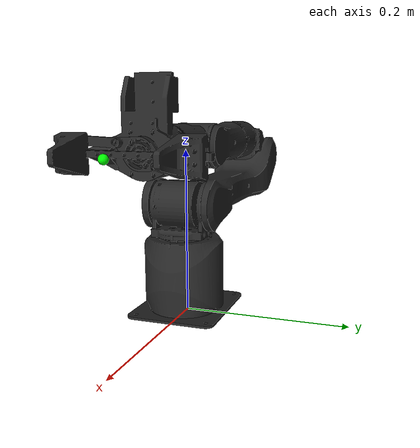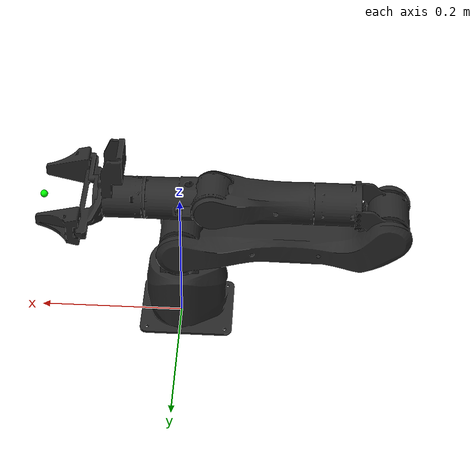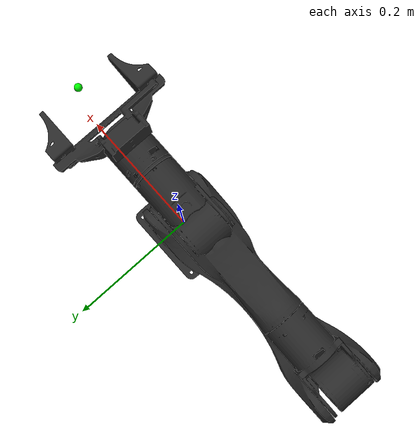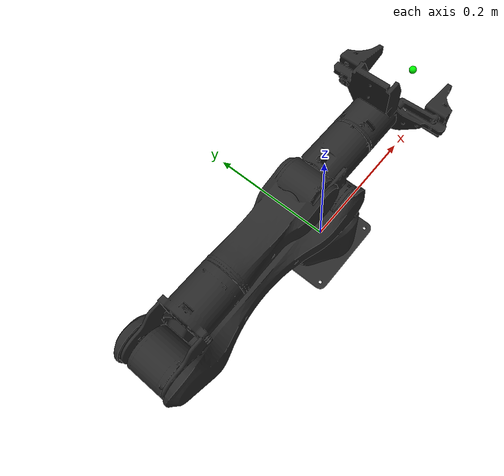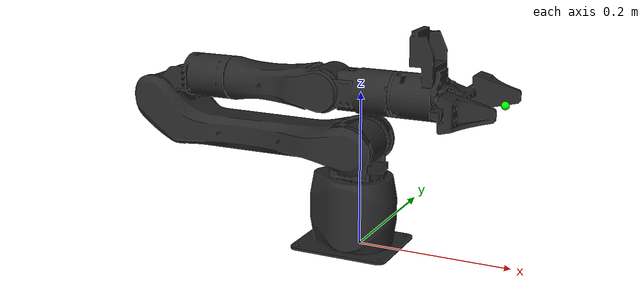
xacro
<?xml version="1.0"?>
<robot xmlns:xacro="http://www.ros.org/wiki/xacro" name="alicia_m_v1_2_follower">
    <xacro:arg name="initial_positions_file" default="initial_positions.yaml" />
    <xacro:arg name="ros2_control_plugin" default="mock_components/GenericSystem" />
    <xacro:arg name="serial_port" default="/dev/ttyACM0" />
    <xacro:arg name="baudrate" default="1000000" />
    <xacro:arg name="control_mode" default="pv" />
    <xacro:arg name="default_speed" default="1.0" />
    <xacro:arg name="mit_kp" default="50.0" />
    <xacro:arg name="mit_kd" default="2.0" />

    <!-- 导入 URDF 模型 -->
    <xacro:include filename="$(find alicia_m_descriptions)/urdf/Alicia_M_v1_2/Alicia_M_v1_2_follower.urdf" />

    <!-- 导入 ros2_control 配置 -->
    <xacro:include filename="alicia_m_v1_2_follower.ros2_control.xacro" />

    <xacro:alicia_m_v1_2_follower_ros2_control
        name="AliciaHardware"
        initial_positions_file="$(arg initial_positions_file)"
        ros2_control_plugin="$(arg ros2_control_plugin)"
        serial_port="$(arg serial_port)"
        baudrate="$(arg baudrate)"
        control_mode="$(arg control_mode)"
        default_speed="$(arg default_speed)"
        mit_kp="$(arg mit_kp)"
        mit_kd="$(arg mit_kd)"/>

</robot>

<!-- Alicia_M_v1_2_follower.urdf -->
<robot
  name="alicia_m_v1_2_follower">
  <mujoco>
    <compiler meshdir="../../meshes/Alicia_M_v1_2/follower" discardvisual="false" />
  </mujoco>
  <link
    name="base_link">
    <inertial>
      <origin
        xyz="-0.0103334311485526 -0.00398385453945082 0.0143582891490441"
        rpy="0 0 0" />
      <mass
        value="1.2877" />
      <inertia
        ixx="0.00234861116473635"
        ixy="-9.65297457777555E-08"
        ixz="4.24432699737844E-05"
        iyy="0.00240394161469715"
        iyz="4.00703606824947E-08"
        izz="0.00318615555166408" />
    </inertial>
    <visual>
      <origin
        xyz="0 0 0"
        rpy="0 0 0" />
      <geometry>
        <mesh
          filename="package://alicia_m_descriptions/meshes/Alicia_M_v1_2/follower/base_link.STL" />
      </geometry>
      <material
        name="">
        <color
          rgba="0.15 0.15 0.15 1" />
      </material>
    </visual>
    <collision>
      <origin
        xyz="0 0 0"
        rpy="0 0 0" />
      <geometry>
        <mesh
          filename="package://alicia_m_descriptions/meshes/Alicia_M_v1_2/follower/base_link.STL" />
      </geometry>
    </collision>
  </link>
  <link
    name="link1">
    <inertial>
      <origin
        xyz="-0.00128221166671431 -0.000784868444913489 0.0320390880049268"
        rpy="0 0 0" />
      <mass
        value="0.5406" />
      <inertia
        ixx="0.000106554926497957"
        ixy="-2.30140022681205E-07"
        ixz="-7.39121862553689E-08"
        iyy="8.50049672355468E-05"
        iyz="1.78364303375665E-07"
        izz="9.72433156881315E-05" />
    </inertial>
    <visual>
      <origin
        xyz="0 0 0"
        rpy="0 0 0" />
      <geometry>
        <mesh
          filename="package://alicia_m_descriptions/meshes/Alicia_M_v1_2/follower/Link1.STL" />
      </geometry>
      <material
        name="">
        <color
          rgba="0.15 0.15 0.15 1" />
      </material>
    </visual>
    <collision>
      <origin
        xyz="0 0 0"
        rpy="0 0 0" />
      <geometry>
        <mesh
          filename="package://alicia_m_descriptions/meshes/Alicia_M_v1_2/follower/Link1.STL" />
      </geometry>
    </collision>
  </link>
  <joint
    name="joint1"
    type="revolute">
    <origin
      xyz="0 -0.0039812 0.09125"
      rpy="0 0 1.5708" />
    <parent
      link="base_link" />
    <child
      link="link1" />
    <axis
      xyz="0 0 1" />
    <limit
      lower="-2.7475"
      upper="2.7475"
      effort="5"
      velocity="10" />
  </joint>
  <link
    name="link2">
    <inertial>
      <origin
        xyz="-0.149110206131976 0.00587855056496403 0.00511128026103987"
        rpy="0 0 0" />
      <mass
        value="0.7456" />
      <inertia
        ixx="0.000390594992994462"
        ixy="-0.000174513517791999"
        ixz="-1.08397040021435E-06"
        iyy="0.00252153883989753"
        iyz="2.76601011372572E-07"
        izz="0.00247149215867246" />
    </inertial>
    <visual>
      <origin
        xyz="0 0 0"
        rpy="0 0 0" />
      <geometry>
        <mesh
          filename="package://alicia_m_descriptions/meshes/Alicia_M_v1_2/follower/Link2.STL" />
      </geometry>
      <material
        name="">
        <color
          rgba="0.15 0.15 0.15 1" />
      </material>
    </visual>
    <collision>
      <origin
        xyz="0 0 0"
        rpy="0 0 0" />
      <geometry>
        <mesh
          filename="package://alicia_m_descriptions/meshes/Alicia_M_v1_2/follower/Link2.STL" />
      </geometry>
    </collision>
  </link>
  <joint
    name="joint2"
    type="revolute">
    <origin
      xyz="0.0039812 0 0.0425"
      rpy="1.5708 0 -1.5708" />
    <parent
      link="link1" />
    <child
      link="link2" />
    <axis
      xyz="0 0 1" />
    <limit
      lower="-3.14"
      upper="0"
      effort="5"
      velocity="10" />
  </joint>
  <link
    name="link3">
    <inertial>
      <origin
        xyz="0.0471352717326471 0.0202037498946963 0.00423214628577229"
        rpy="0 0 0" />
      <mass
        value="0.4848" />
      <inertia
        ixx="0.0002147828565748"
        ixy="9.61503533058426E-06"
        ixz="-7.38783597929946E-08"
        iyy="0.000170815770161173"
        iyz="-5.15998814935893E-08"
        izz="0.000191605361638939" />
    </inertial>
    <visual>
      <origin
        xyz="0 0 0"
        rpy="0 0 0" />
      <geometry>
        <mesh
          filename="package://alicia_m_descriptions/meshes/Alicia_M_v1_2/follower/Link3.STL" />
      </geometry>
      <material
        name="">
        <color
          rgba="0.15 0.15 0.15 1" />
      </material>
    </visual>
    <collision>
      <origin
        xyz="0 0 0"
        rpy="0 0 0" />
      <geometry>
        <mesh
          filename="package://alicia_m_descriptions/meshes/Alicia_M_v1_2/follower/Link3.STL" />
      </geometry>
    </collision>
  </link>
  <joint
    name="joint3"
    type="revolute">
    <origin
      xyz="-0.28184 0.040424 0"
      rpy="0 0 0" />
    <parent
      link="link2" />
    <child
      link="link3" />
    <axis
      xyz="0 0 -1" />
    <limit
      lower="-3.14"
      upper="0"
      effort="5"
      velocity="10" />
  </joint>
  <link
    name="link4">
    <inertial>
      <origin
        xyz="-5.27169367604829E-05 0.000828604472237988 0.101643736358595"
        rpy="0 0 0" />
      <mass
        value="0.5496" />
      <inertia
        ixx="0.00028255308883228"
        ixy="-1.33853178351593E-07"
        ixz="2.70285319075968E-07"
        iyy="0.000326578235252475"
        iyz="4.29699957506392E-07"
        izz="0.000156850634511828" />
    </inertial>
    <visual>
      <origin
        xyz="0 0 0"
        rpy="0 0 0" />
      <geometry>
        <mesh
          filename="package://alicia_m_descriptions/meshes/Alicia_M_v1_2/follower/Link4.STL" />
      </geometry>
      <material
        name="">
        <color
          rgba="0.15 0.15 0.15 1" />
      </material>
    </visual>
    <collision>
      <origin
        xyz="0 0 0"
        rpy="0 0 0" />
      <geometry>
        <mesh
          filename="package://alicia_m_descriptions/meshes/Alicia_M_v1_2/follower/Link4.STL" />
      </geometry>
    </collision>
  </link>
  <joint
    name="joint4"
    type="revolute">
    <origin
      xyz="0.10092 0.028546 0.0036562"
      rpy="-1.5708 0 -1.5708" />
    <parent
      link="link3" />
    <child
      link="link4" />
    <axis
      xyz="0 0 1" />
    <limit
      lower="-2.79"
      upper="2.79"
      effort="5"
      velocity="10" />
  </joint>
  <link
    name="link5">
    <inertial>
      <origin
        xyz="-0.000158067588989119 0.0618237517311098 0.00493170386673768"
        rpy="0 0 0" />
      <mass
        value="0.40889" />
      <inertia
        ixx="0.000104587906011128"
        ixy="-1.6454205645401E-07"
        ixz="-2.7063034615432E-08"
        iyy="0.000134781703440636"
        iyz="-2.57336134780647E-07"
        izz="0.000109644134958926" />
    </inertial>
    <visual>
      <origin
        xyz="0 0 0"
        rpy="0 0 0" />
      <geometry>
        <mesh
          filename="package://alicia_m_descriptions/meshes/Alicia_M_v1_2/follower/Link5.STL" />
      </geometry>
      <material
        name="">
        <color
          rgba="0.15 0.15 0.15 1" />
      </material>
    </visual>
    <collision>
      <origin
        xyz="0 0 0"
        rpy="0 0 0" />
      <geometry>
        <mesh
          filename="package://alicia_m_descriptions/meshes/Alicia_M_v1_2/follower/Link5.STL" />
      </geometry>
    </collision>
  </link>
  <joint
    name="joint5"
    type="revolute">
    <origin
      xyz="0 0.0036562 0.1365"
      rpy="1.5708 0 0" />
    <parent
      link="link4" />
    <child
      link="link5" />
    <axis
      xyz="0 0 1" />
    <limit
      lower="-1.57"
      upper="1.57"
      effort="5"
      velocity="10" />
  </joint>
  <link
    name="link6">
    <inertial>
      <origin
        xyz="-0.00948998636754905 0.000191532978881798 0.0380505833920446"
        rpy="0 0 0" />
      <mass
        value="0.4758" /> <!-- no camera: 0.376, camera: 99.8g -->
      <inertia
        ixx="0.000201456867657842"
        ixy="-3.30971599095294E-07"
        ixz="1.95742568443115E-06"
        iyy="0.000124595528900766"
        iyz="1.24978781875172E-07"
        izz="0.000253878310814564" />
    </inertial>
    <visual>
      <origin
        xyz="0 0 0"
        rpy="0 0 0" />
      <geometry>
        <mesh
          filename="package://alicia_m_descriptions/meshes/Alicia_M_v1_2/follower/Link6.STL" />
      </geometry>
      <material
        name="">
        <color
          rgba="0.15 0.15 0.15 1" />
      </material>
    </visual>
    <collision>
      <origin
        xyz="0 0 0"
        rpy="0 0 0" />
      <geometry>
        <mesh
          filename="package://alicia_m_descriptions/meshes/Alicia_M_v1_2/follower/Link6.STL" />
      </geometry>
    </collision>
  </link>
  <joint
    name="joint6"
    type="revolute">
    <origin
      xyz="0 0.091 0.0036563"
      rpy="-1.5708 0 0" />
    <parent
      link="link5" />
    <child
      link="link6" />
    <axis
      xyz="0 0 1" />
    <limit
      lower="-2.791"
      upper="2.791"
      effort="5"
      velocity="10" />
  </joint>
  <link
    name="grasp_base">
    <inertial>
      <origin
        xyz="-0.0852198249110105 -0.00365737918221872 -0.635998735149676"
        rpy="0 0 0" />
      <mass
        value="0.0425" />
      <inertia
        ixx="2.85284349691811E-06"
        ixy="4.98625802715105E-07"
        ixz="-9.10665648582534E-13"
        iyy="1.02173073972286E-06"
        iyz="-4.75683900460703E-12"
        izz="3.62557456427301E-06" />
    </inertial>
    <visual>
      <origin
        xyz="0 0 0"
        rpy="0 0 0" />
      <geometry>
        <mesh
          filename="package://alicia_m_descriptions/meshes/Alicia_M_v1_2/follower/grasp_base.STL" />
      </geometry>
      <material
        name="">
        <color
          rgba="0.15 0.15 0.15 1" />
      </material>
    </visual>
    <collision>
      <origin
        xyz="0 0 0"
        rpy="0 0 0" />
      <geometry>
        <mesh
          filename="package://alicia_m_descriptions/meshes/Alicia_M_v1_2/follower/grasp_base.STL" />
      </geometry>
    </collision>
  </link>
  <joint
    name="grasp_base_joint"
    type="fixed">
    <origin
      xyz="0.0852198249102375 0.00365621749159879 0.705182667183205"
      rpy="0 0 0" />
    <parent
      link="link6" />
    <child
      link="grasp_base" />
    <axis
      xyz="0 0 0" />
  </joint>
  <link
    name="link7">
    <inertial>
      <origin
        xyz="-0.0424955348184516 -1.6632181576437E-08 -0.010712473883987"
        rpy="0 0 0" />
      <mass
        value="0.0260" />
      <inertia
        ixx="5.1089208324363E-06"
        ixy="-2.49929022186501E-11"
        ixz="1.289587574768E-06"
        iyy="6.51611349918903E-06"
        iyz="4.24550714795007E-13"
        izz="8.13762906257037E-06" />
    </inertial>
    <visual>
      <origin
        xyz="0 0 0"
        rpy="0 0 0" />
      <geometry>
        <mesh
          filename="package://alicia_m_descriptions/meshes/Alicia_M_v1_2/follower/Link7.STL" />
      </geometry>
      <material
        name="">
        <color
          rgba="0.15 0.15 0.15 1" />
      </material>
    </visual>
    <collision>
      <origin
        xyz="0 0 0"
        rpy="0 0 0" />
      <geometry>
        <mesh
          filename="package://alicia_m_descriptions/meshes/Alicia_M_v1_2/follower/Link7.STL" />
      </geometry>
    </collision>
  </link>
  <joint
    name="left_finger"
    type="prismatic">
    <origin
      xyz="-0.0852198249102478 -0.0536572471053041 -0.563682569174653"
      rpy="-3.14159264689699 -1.57079450020183 1.57079632010208" />
    <parent
      link="grasp_base" />
    <child
      link="link7" />
    <axis
      xyz="0 0 -1" />
    <limit
      lower="-0.05"
      upper="0"
      effort="5"
      velocity="10" />
  </joint>
  <link
    name="link8">
    <inertial>
      <origin
        xyz="0.0424955348184515 1.66322544070674E-08 -0.0107124738840044"
        rpy="0 0 0" />
      <mass
        value="0.0260" />
      <inertia
        ixx="5.10892083243629E-06"
        ixy="-2.49929022120569E-11"
        ixz="-1.28958757476799E-06"
        iyy="6.51611349918905E-06"
        iyz="-4.24550720177534E-13"
        izz="8.13762906257038E-06" />
    </inertial>
    <visual>
      <origin
        xyz="0 0 0"
        rpy="0 0 0" />
      <geometry>
        <mesh
          filename="package://alicia_m_descriptions/meshes/Alicia_M_v1_2/follower/Link8.STL" />
      </geometry>
      <material
        name="">
        <color
          rgba="0.15 0.15 0.15 1" />
      </material>
    </visual>
    <collision>
      <origin
        xyz="0 0 0"
        rpy="0 0 0" />
      <geometry>
        <mesh
          filename="package://alicia_m_descriptions/meshes/Alicia_M_v1_2/follower/Link8.STL" />
      </geometry>
    </collision>
  </link>
  <joint
    name="right_finger"
    type="prismatic">
    <origin
      xyz="-0.0852198249102447 0.0463427528945291 -0.563682751833062"
      rpy="0 1.57079450020183 -1.57079633348771" />
    <parent
      link="grasp_base" />
    <child
      link="link8" />
    <axis
      xyz="0 0 1" />
    <limit
      lower="0"
      upper="0.05"
      effort="5"
      velocity="10" />
    <mimic joint="left_finger" multiplier="-1.0" offset="0" />
  </joint>
  <link
    name="tool0">
    <visual>
      <origin
        xyz="0 0 0"
        rpy="0 0 0" />
      <geometry>
        <sphere radius="0.005" />
      </geometry>
      <material
        name="green_virtual_sphere_material">
        <color
          rgba="0 1 0 1" />
      </material>
    </visual>
  </link>
  <joint
    name="tool0_fixed_joint"
    type="fixed">
    <origin
      xyz="0 0 0.1375"
      rpy="0 0 0" />
    <parent
      link="link6" />
    <child
      link="tool0" />
    <axis
      xyz="0 0 0" />
  </joint>

</robot>
